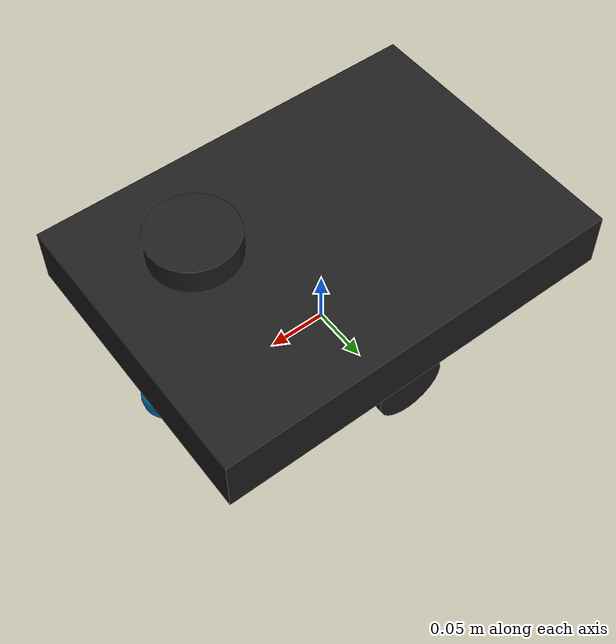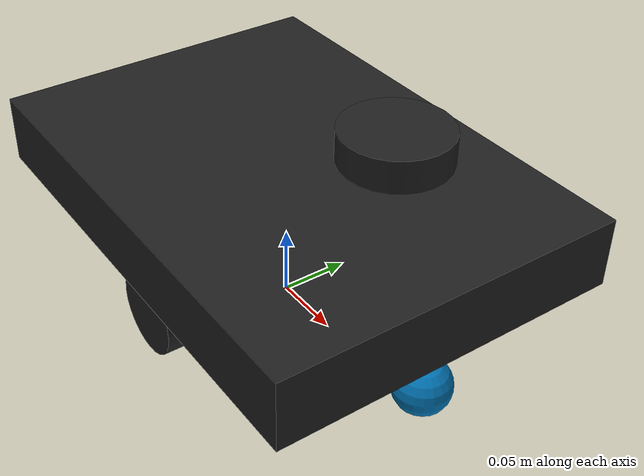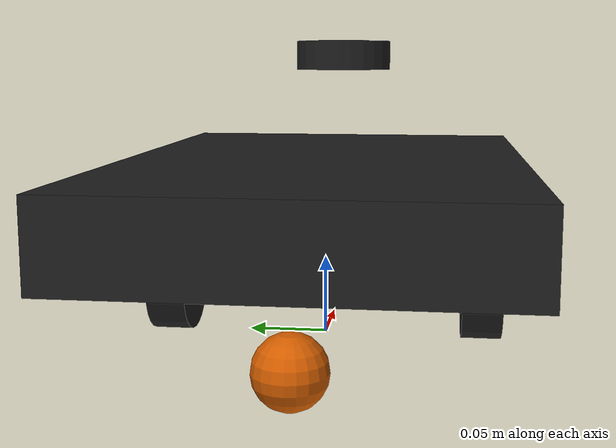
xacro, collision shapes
<?xml version="1.0" ?>
<robot name="aka_robot" xmlns:xacro="http://ros.org/wiki/xacro">
  <xacro:include filename="$(find aka_robot_description)/urdf/common_properties.xacro"/>
  <xacro:include filename="$(find aka_robot_description)/urdf/aka_robot.gazebo.xacro"/>

  <link name="base_footprint"/>

  <joint name="base_joint" type="fixed">
    <parent link="base_footprint"/>
    <child link="base_link"/>
    <origin xyz="0.0 0.0 0.03" rpy="0 0 0"/>
  </joint>

  <link name="base_link">
    <visual>
      <origin xyz="0 0 0.0" rpy="0 0 0"/>
      <geometry>
        <mesh filename="package://aka_robot_description/meshes/base.dae"/>
      </geometry>
      <material name="light_black"/>
    </visual>

    <collision>
      <origin xyz="0 0 0.06" rpy="0 0 0"/>
      <geometry>
        <box size="0.35 0.25 0.05"/>
      </geometry>
    </collision>

    <inertial>
      <origin xyz="0 0 0" rpy="0 0 0"/>
      <mass value="8.2573504e-01"/>
      <inertia ixx="2.2124416e-03" ixy="-1.2294101e-05" ixz="3.4938785e-05"
               iyy="2.1193702e-03" iyz="-5.0120904e-06"
               izz="2.0064271e-03" />
    </inertial>
  </link>

  <joint name="wheel_left_joint" type="continuous">
    <parent link="base_link"/>
    <child link="wheel_left_link"/>
    <origin xyz="0.0 0.1 0.0" rpy="-1.57 0 0"/>
    <axis xyz="0 0 1"/>
  </joint>

  <link name="wheel_left_link">
    <visual>
      <origin xyz="0 0 0" rpy="-1.57 0 0"/>
      <geometry>
        <mesh filename="package://aka_robot_description/meshes/wheel.dae"/>
      </geometry>
      <material name="dark"/>
    </visual>

    <collision>
      <origin xyz="0 0 0" rpy="0 0 0"/>
      <geometry>
        <cylinder length="0.025" radius="0.03"/>
      </geometry>
    </collision>

    <inertial>
      <origin xyz="0 0 0" />
      <mass value="2.8498940e-02" />
      <inertia ixx="1.1175580e-05" ixy="-4.2369783e-11" ixz="-5.9381719e-09"
               iyy="1.1192413e-05" iyz="-1.4400107e-11"
               izz="2.0712558e-05" />
      </inertial>
  </link>

  <joint name="wheel_right_joint" type="continuous">
    <parent link="base_link"/>
    <child link="wheel_right_link"/>
    <origin xyz="0.0 -0.1 0.0" rpy="-1.57 0 0"/>
    <axis xyz="0 0 1"/>
  </joint>

  <link name="wheel_right_link">
    <visual>
      <origin xyz="0 0 0" rpy="-1.57 0 0"/>
      <geometry>
        <mesh filename="package://aka_robot_description/meshes/wheel.dae"/>
      </geometry>
      <material name="dark"/>
    </visual>

    <collision>
      <origin xyz="0 0 0" rpy="0 0 0"/>
      <geometry>
        <cylinder length="0.025" radius="0.03"/>
      </geometry>
    </collision>

    <inertial>
      <origin xyz="0 0 0" />
      <mass value="2.8498940e-02" />
      <inertia ixx="1.1175580e-05" ixy="-4.2369783e-11" ixz="-5.9381719e-09"
               iyy="1.1192413e-05" iyz="-1.4400107e-11"
               izz="2.0712558e-05" />
      </inertial>
  </link>

  <joint name="caster_front_joint" type="fixed">
    <parent link="base_link"/>
    <child link="caster_front_joint"/>
    <origin xyz="0.15 0 -0.005" rpy="0 0 0"/>
    <joint_properties damping="1.0" friction="1.0" />
  </joint>

  <link name="caster_front_joint">

    <collision>
      <origin xyz="0 0 0.0001" rpy="0 0 0"/>
      <geometry>
        <sphere radius="0.02" />
      </geometry>
    </collision>

    <inertial>
      <origin xyz="0 0 0" />
      <mass value="0.005" />
      <inertia ixx="0.001" ixy="0.0" ixz="0.0"
               iyy="0.001" iyz="0.0"
               izz="0.001" />
    </inertial>
  </link>

  <joint name="caster_back_joint" type="fixed">
    <parent link="base_link"/>
    <child link="caster_back_link"/>
    <origin xyz="-0.15 0 -0.005" rpy="0 0 0"/>
    <joint_properties damping="1.0" friction="1.0" />
  </joint>

  <link name="caster_back_link">

    <collision>
      <origin xyz="0 0 0.0001" rpy="0 0 0"/>
      <geometry>
        <sphere radius="0.02" />
      </geometry>
    </collision>

    <inertial>
      <origin xyz="0 0 0" />
      <mass value="0.005" />
      <inertia ixx="0.001" ixy="0.0" ixz="0.0"
               iyy="0.001" iyz="0.0"
               izz="0.001" />
    </inertial>
  </link>

  <joint name="scan_joint" type="fixed">
    <parent link="base_link"/>
    <child link="base_scan"/>
    <origin xyz="0.11 0 0.15" rpy="0 0 3.14159"/>
  </joint>

  <link name="base_scan">
    <visual>
      <origin xyz="0 0 0.0" rpy="0 0 3.14159"/>
      <geometry>
        <mesh filename="package://aka_robot_description/meshes/lidar.dae"/>
      </geometry>
      <material name="dark"/>
    </visual>

    <collision>
      <origin xyz="0.0 0 0" rpy="0 0 0"/>
      <geometry>
        <cylinder length="0.021" radius="0.035"/>
      </geometry>
    </collision>

    <inertial>
      <mass value="0.114" />
      <origin xyz="0 0 0" />
      <inertia ixx="0.001" ixy="0.0" ixz="0.0"
               iyy="0.001" iyz="0.0"
               izz="0.001" />
    </inertial>
  </link>

</robot>
